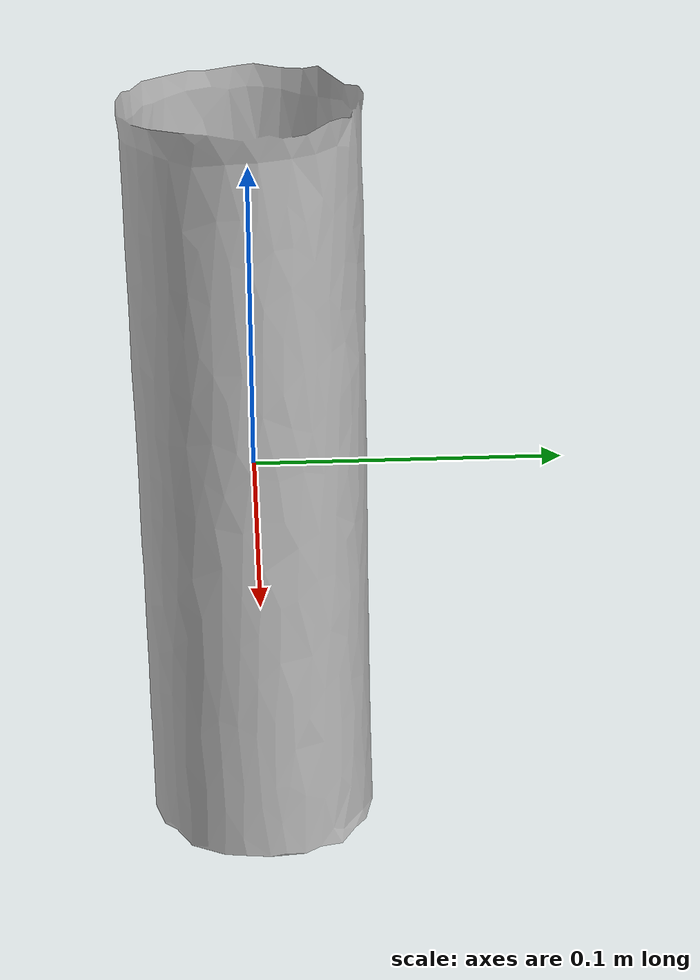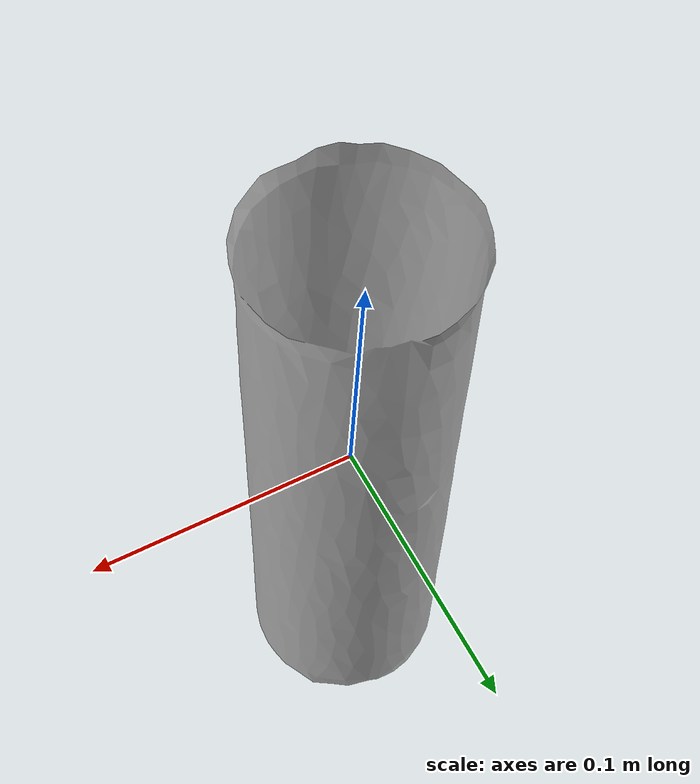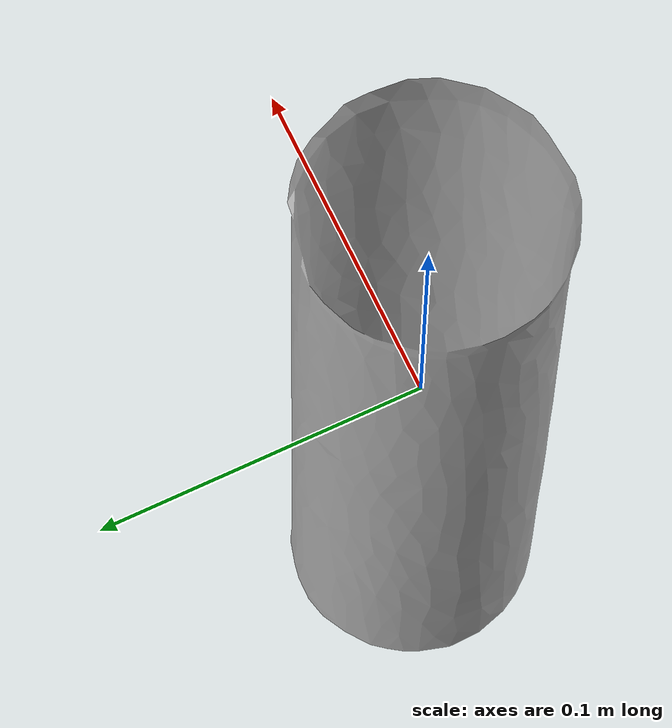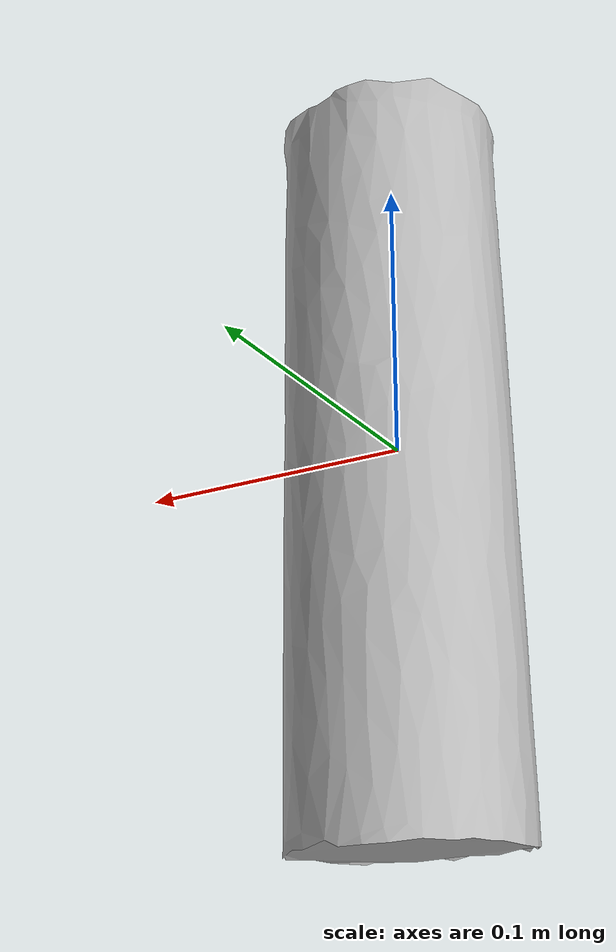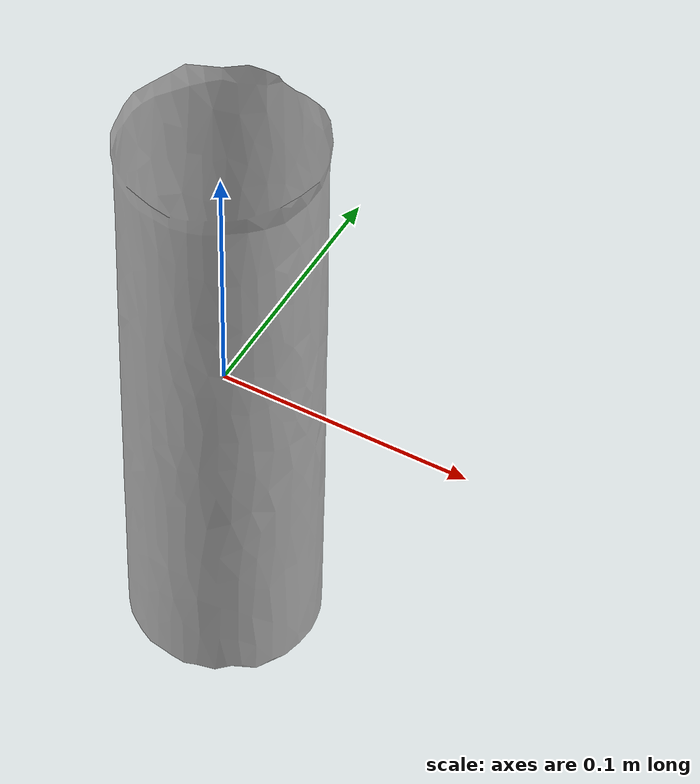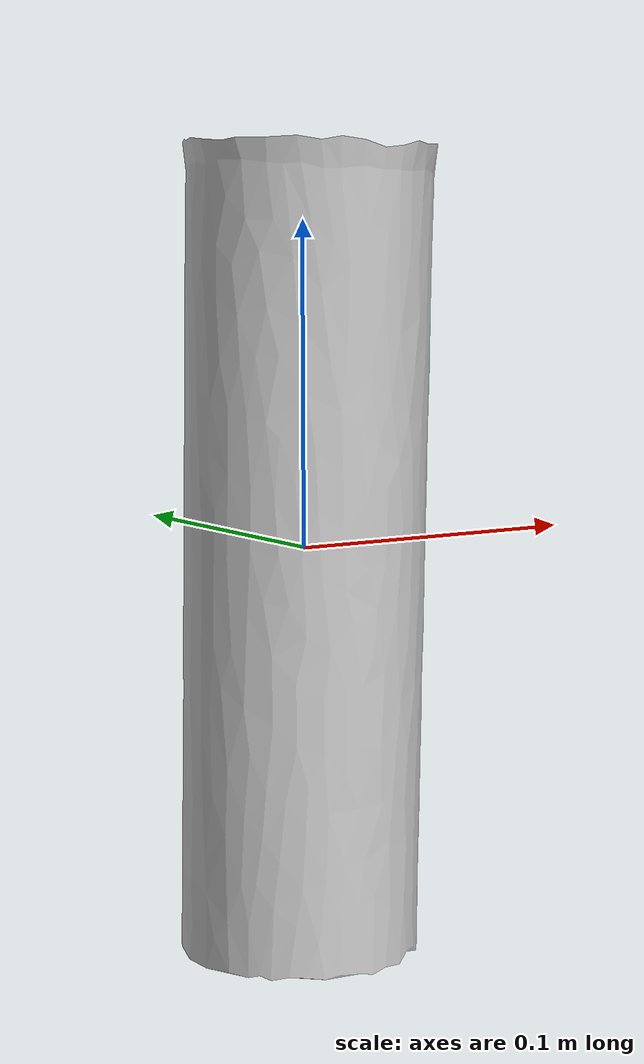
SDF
<?xml version="1.0" ?>
<sdf version="1.4">
  <model name="pringles_vinegar">
    <link name="pringles_vinegar_link">
      <inertial>
        <pose>0 0 0 0 0 0</pose>
        <mass>0.08</mass>
      </inertial>

      <visual name="pringles_vinegar_visual">
        <pose>0 0 0 0 0 0</pose>
        <material>
          <script>
            <uri>model://pringles_vinegar/materials/scripts</uri>
            <uri>model://pringles_vinegar/materials/textures</uri>
            <name>pringles_vinegar</name>
          </script>
        </material>
        <geometry>
          <mesh>
            <uri>model://pringles_vinegar/meshes/pringles_vinegar.dae</uri>
          </mesh>
        </geometry>
      </visual>

      <collision name="pringles_vinegar_collision">
        <pose>0 0 0 0 0 0</pose>
        <geometry>
          <mesh>
            <uri>model://pringles_vinegar/meshes/pringles_vinegar.dae</uri>
          </mesh>
        </geometry>
        <surface>
          <friction>
            <ode>
              <mu>0.8</mu>
              <mu2>0.8</mu2>
              <fdir1>0.0 0.0 0.0</fdir1>
              <slip1>0.01</slip1>
              <slip2>0.01</slip2>
            </ode>
          </friction>
        </surface>
      </collision>

    </link>
  </model>
</sdf>
